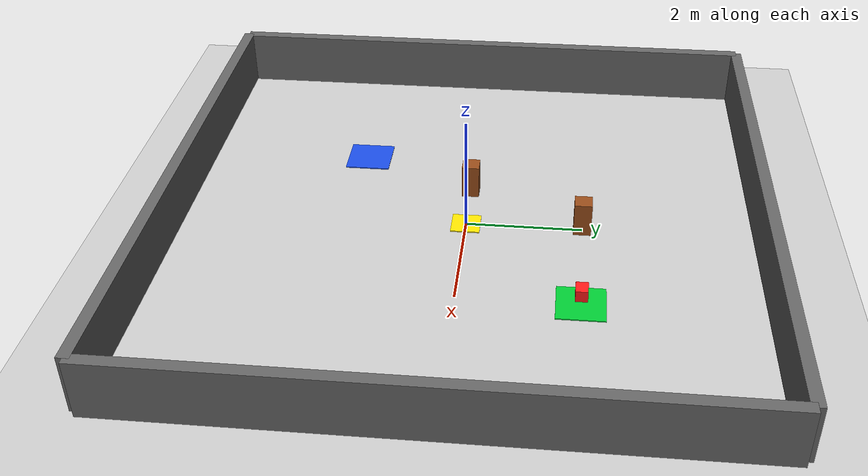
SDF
<?xml version="1.0" ?>
<sdf version="1.6">
  <world name="delivery_world">

    <include><uri>model://ground_plane</uri></include>
    <include><uri>model://sun</uri></include>

    <!-- Physics tuning for stability -->
    <physics type="ode">
      <max_step_size>0.004</max_step_size>
      <real_time_factor>1</real_time_factor>
      <real_time_update_rate>250</real_time_update_rate>
      <ode>
        <solver>
          <type>quick</type>
          <iters>50</iters>
        </solver>
      </ode>
    </physics>

    <!-- ── BOUNDARY WALLS ── -->
    <model name="wall_north">
      <static>true</static><pose>0 5 0.5 0 0 0</pose>
      <link name="link">
        <collision name="c"><geometry><box><size>10 0.2 1</size></box></geometry></collision>
        <visual name="v">
          <geometry><box><size>10 0.2 1</size></box></geometry>
          <material><ambient>0.4 0.4 0.4 1</ambient></material>
        </visual>
      </link>
    </model>
    <model name="wall_south">
      <static>true</static><pose>0 -5 0.5 0 0 0</pose>
      <link name="link">
        <collision name="c"><geometry><box><size>10 0.2 1</size></box></geometry></collision>
        <visual name="v">
          <geometry><box><size>10 0.2 1</size></box></geometry>
          <material><ambient>0.4 0.4 0.4 1</ambient></material>
        </visual>
      </link>
    </model>
    <model name="wall_east">
      <static>true</static><pose>5 0 0.5 0 0 0</pose>
      <link name="link">
        <collision name="c"><geometry><box><size>0.2 10 1</size></box></geometry></collision>
        <visual name="v">
          <geometry><box><size>0.2 10 1</size></box></geometry>
          <material><ambient>0.4 0.4 0.4 1</ambient></material>
        </visual>
      </link>
    </model>
    <model name="wall_west">
      <static>true</static><pose>-5 0 0.5 0 0 0</pose>
      <link name="link">
        <collision name="c"><geometry><box><size>0.2 10 1</size></box></geometry></collision>
        <visual name="v">
          <geometry><box><size>0.2 10 1</size></box></geometry>
          <material><ambient>0.4 0.4 0.4 1</ambient></material>
        </visual>
      </link>
    </model>

    <!-- ── PICKUP ZONE marker (green platform) ── -->
    <model name="pickup_zone">
      <static>true</static><pose>2 2 0.01 0 0 0</pose>
      <link name="link">
        <visual name="v">
          <geometry><box><size>0.8 0.8 0.02</size></box></geometry>
          <material><ambient>0.0 0.8 0.2 1</ambient></material>
        </visual>
      </link>
    </model>

    <!-- ── DROP ZONE marker (blue platform) ── -->
    <model name="drop_zone">
      <static>true</static><pose>-2 -2 0.01 0 0 0</pose>
      <link name="link">
        <visual name="v">
          <geometry><box><size>0.8 0.8 0.02</size></box></geometry>
          <material><ambient>0.1 0.3 0.9 1</ambient></material>
        </visual>
      </link>
    </model>

    <!-- ── HOME BASE marker (yellow) ── -->
    <model name="home_base">
      <static>true</static><pose>0 0 0.01 0 0 0</pose>
      <link name="link">
        <visual name="v">
          <geometry><box><size>0.5 0.5 0.02</size></box></geometry>
          <material><ambient>1.0 0.9 0.0 1</ambient></material>
        </visual>
      </link>
    </model>

    <!-- ── DELIVERY BOX (movable, red) ── -->
    <model name="delivery_box">
      <static>false</static>
      <pose>2 2 0.25 0 0 0</pose>
      <link name="link">
        <collision name="c">
          <geometry><box><size>0.25 0.20 0.20</size></box></geometry>
        </collision>
        <visual name="v">
          <geometry><box><size>0.25 0.20 0.20</size></box></geometry>
          <material><ambient>1 0.1 0.1 1</ambient></material>
        </visual>
        <inertial>
          <mass>0.5</mass>
          <inertia>
            <ixx>0.004</ixx><iyy>0.004</iyy><izz>0.004</izz>
          </inertia>
        </inertial>
      </link>
    </model>

    <!-- ── OBSTACLES ── -->
    <model name="obstacle_1">
      <static>true</static><pose>0 2 0.3 0 0 0</pose>
      <link name="link">
        <collision name="c"><geometry><box><size>0.3 0.3 0.6</size></box></geometry></collision>
        <visual name="v">
          <geometry><box><size>0.3 0.3 0.6</size></box></geometry>
          <material><ambient>0.6 0.3 0.1 1</ambient></material>
        </visual>
      </link>
    </model>
    <model name="obstacle_2">
      <static>true</static><pose>-1 0 0.3 0 0 0</pose>
      <link name="link">
        <collision name="c"><geometry><box><size>0.3 0.3 0.6</size></box></geometry></collision>
        <visual name="v">
          <geometry><box><size>0.3 0.3 0.6</size></box></geometry>
          <material><ambient>0.6 0.3 0.1 1</ambient></material>
        </visual>
      </link>
    </model>

  </world>
</sdf>
